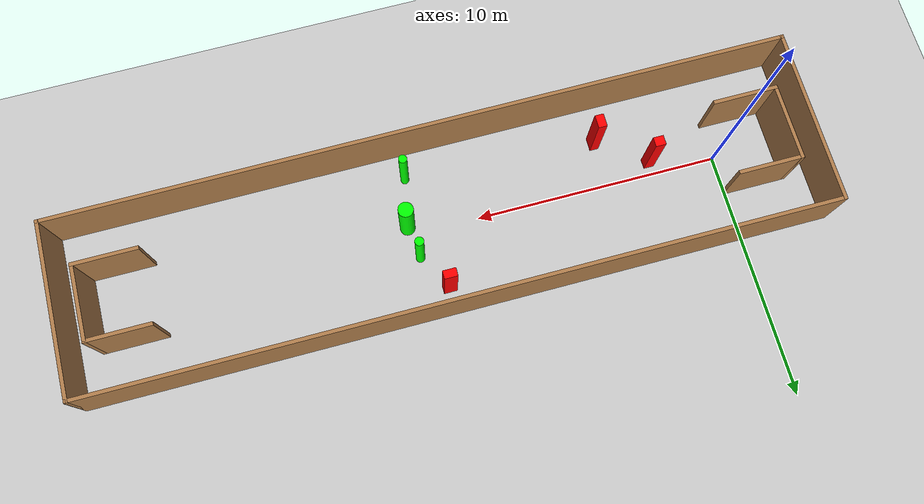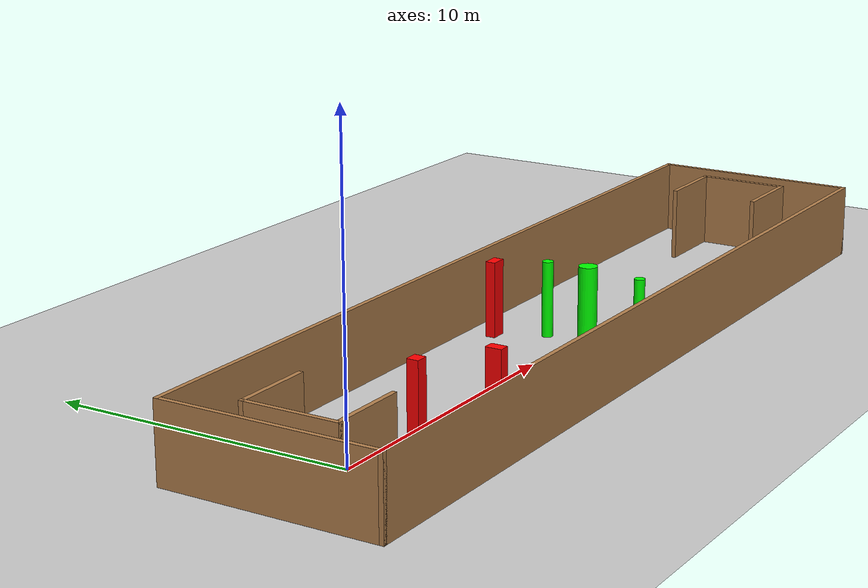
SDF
<sdf version="1.7">
 <world name="default">
  <light name="sun" type="directional">
   <pose>0 0 10 0 -0 0</pose>
   <diffuse>0.8 0.8 0.8 1</diffuse>
   <specular>0.2 0.2 0.2 1</specular>
   <attenuation>
    <range>1000</range>
    <constant>0.9</constant>
    <linear>0.01</linear>
    <quadratic>0.001</quadratic>
   </attenuation>
   <direction>-0.5 0.1 -0.9</direction>
   <spot><inner_angle>0</inner_angle><outer_angle>0</outer_angle><falloff>0</falloff></spot>
  </light>
  <model name="ground_plane">
   <static>1</static>
   <link name="link">
    <collision name="collision">
     <geometry><plane><normal>0 0 1</normal><size>100 100</size></plane></geometry>
     <surface>
      <contact><collide_bitmask>65535</collide_bitmask></contact>
      <friction><ode><mu>100</mu><mu2>50</mu2></ode></friction>
     </surface>
    </collision>
    <visual name="visual">
     <cast_shadows>0</cast_shadows>
     <geometry><plane><normal>0 0 1</normal><size>100 100</size></plane></geometry>
     <material>
      <script><uri>file://media/materials/scripts/gazebo.material</uri><name>Gazebo/Grey</name></script>
     </material>
    </visual>
   </link>
  </model>
  <gravity>0 0 -9.8</gravity>
  <magnetic_field>6e-06 2.3e-05 -4.2e-05</magnetic_field>
  <atmosphere type="adiabatic"/>
  <physics type="ode">
   <max_step_size>0.001</max_step_size>
   <real_time_factor>1</real_time_factor>
   <real_time_update_rate>1000</real_time_update_rate>
  </physics>
  <scene><ambient>0.4 0.4 0.4 1</ambient><background>0.7 0.7 0.7 1</background><shadows>1</shadows></scene>
  <spherical_coordinates>
   <surface_model>EARTH_WGS84</surface_model>
   <latitude_deg>0</latitude_deg>
   <longitude_deg>0</longitude_deg>
   <elevation>0</elevation>
   <heading_deg>0</heading_deg>
  </spherical_coordinates>
  <model name="my_base_walls">
   <link name="Wall_0">
    <collision name="Wall_0_Collision">
     <geometry><box><size>7.15 0.15 2.5</size></box></geometry>
     <pose>0 0 1.25 0 -0 0</pose>
    </collision>
    <visual name="Wall_0_Visual">
     <pose>0 0 1.25 0 -0 0</pose>
     <geometry><box><size>7.15 0.15 2.5</size></box></geometry>
     <material>
      <script><uri>file://media/materials/scripts/gazebo.material</uri><name>Gazebo/Wood</name></script>
      <ambient>1 1 1 1</ambient>
     </material>
     <meta><layer>0</layer></meta>
    </visual>
    <pose>-15 0 0 0 -0 1.5708</pose>
   </link>
   <link name="Wall_10">
    <collision name="Wall_10_Collision">
     <geometry><box><size>2.65 0.15 2.5</size></box></geometry>
     <pose>0 0 1.25 0 -0 0</pose>
    </collision>
    <visual name="Wall_10_Visual">
     <pose>0 0 1.25 0 -0 0</pose>
     <geometry><box><size>2.65 0.15 2.5</size></box></geometry>
     <material>
      <script><uri>file://media/materials/scripts/gazebo.material</uri><name>Gazebo/Wood</name></script>
      <ambient>1 1 1 1</ambient>
     </material>
     <meta><layer>0</layer></meta>
    </visual>
    <pose>-12.75 -1.5 0 0 -0 0</pose>
   </link>
   <link name="Wall_12">
    <collision name="Wall_12_Collision">
     <geometry><box><size>2.65 0.15 2.5</size></box></geometry>
     <pose>0 0 1.25 0 -0 0</pose>
    </collision>
    <visual name="Wall_12_Visual">
     <pose>0 0 1.25 0 -0 0</pose>
     <geometry><box><size>2.65 0.15 2.5</size></box></geometry>
     <material>
      <script><uri>file://media/materials/scripts/gazebo.material</uri><name>Gazebo/Wood</name></script>
      <ambient>1 1 1 1</ambient>
     </material>
     <meta><layer>0</layer></meta>
    </visual>
    <pose>-12.75 1.5 0 0 -0 0</pose>
   </link>
   <link name="Wall_14">
    <collision name="Wall_14_Collision">
     <geometry><box><size>3.15 0.15 2.5</size></box></geometry>
     <pose>0 0 1.25 0 -0 0</pose>
    </collision>
    <visual name="Wall_14_Visual">
     <pose>0 0 1.25 0 -0 0</pose>
     <geometry><box><size>3.15 0.15 2.5</size></box></geometry>
     <material>
      <script><uri>file://media/materials/scripts/gazebo.material</uri><name>Gazebo/Wood</name></script>
      <ambient>1 1 1 1</ambient>
     </material>
     <meta><layer>0</layer></meta>
    </visual>
    <pose>14 0 0 0 -0 -1.5708</pose>
   </link>
   <link name="Wall_15">
    <collision name="Wall_15_Collision">
     <geometry><box><size>2.65 0.15 2.5</size></box></geometry>
     <pose>0 0 1.25 0 -0 0</pose>
    </collision>
    <visual name="Wall_15_Visual">
     <pose>0 0 1.25 0 -0 0</pose>
     <geometry><box><size>2.65 0.15 2.5</size></box></geometry>
     <material>
      <script><uri>file://media/materials/scripts/gazebo.material</uri><name>Gazebo/Wood</name></script>
      <ambient>1 1 1 1</ambient>
     </material>
     <meta><layer>0</layer></meta>
    </visual>
    <pose>12.75 -1.5 0 0 -0 3.14159</pose>
   </link>
   <link name="Wall_17">
    <collision name="Wall_17_Collision">
     <geometry><box><size>2.65 0.15 2.5</size></box></geometry>
     <pose>0 0 1.25 0 -0 0</pose>
    </collision>
    <visual name="Wall_17_Visual">
     <pose>0 0 1.25 0 -0 0</pose>
     <geometry><box><size>2.65 0.15 2.5</size></box></geometry>
     <material>
      <script><uri>file://media/materials/scripts/gazebo.material</uri><name>Gazebo/Wood</name></script>
      <ambient>1 1 1 1</ambient>
     </material>
     <meta><layer>0</layer></meta>
    </visual>
    <pose>12.75 1.5 0 0 -0 3.14159</pose>
   </link>
   <link name="Wall_2">
    <collision name="Wall_2_Collision">
     <geometry><box><size>30.15 0.15 2.5</size></box></geometry>
     <pose>0 0 1.25 0 -0 0</pose>
    </collision>
    <visual name="Wall_2_Visual">
     <pose>0 0 1.25 0 -0 0</pose>
     <geometry><box><size>30.15 0.15 2.5</size></box></geometry>
     <material>
      <script><uri>file://media/materials/scripts/gazebo.material</uri><name>Gazebo/Wood</name></script>
      <ambient>1 1 1 1</ambient>
     </material>
     <meta><layer>0</layer></meta>
    </visual>
    <pose>-0 -3.5 0 0 -0 0</pose>
   </link>
   <link name="Wall_4">
    <collision name="Wall_4_Collision">
     <geometry><box><size>30.15 0.15 2.5</size></box></geometry>
     <pose>0 0 1.25 0 -0 0</pose>
    </collision>
    <visual name="Wall_4_Visual">
     <pose>0 0 1.25 0 -0 0</pose>
     <geometry><box><size>30.15 0.15 2.5</size></box></geometry>
     <material>
      <script><uri>file://media/materials/scripts/gazebo.material</uri><name>Gazebo/Wood</name></script>
      <ambient>1 1 1 1</ambient>
     </material>
     <meta><layer>0</layer></meta>
    </visual>
    <pose>-0 3.5 0 0 -0 0</pose>
   </link>
   <link name="Wall_6">
    <collision name="Wall_6_Collision">
     <geometry><box><size>7.15 0.15 2.5</size></box></geometry>
     <pose>0 0 1.25 0 -0 0</pose>
    </collision>
    <visual name="Wall_6_Visual">
     <pose>0 0 1.25 0 -0 0</pose>
     <geometry><box><size>7.15 0.15 2.5</size></box></geometry>
     <material>
      <script><uri>file://media/materials/scripts/gazebo.material</uri><name>Gazebo/Wood</name></script>
      <ambient>1 1 1 1</ambient>
     </material>
     <meta><layer>0</layer></meta>
    </visual>
    <pose>15 0 0 0 -0 -1.5708</pose>
   </link>
   <link name="Wall_9">
    <collision name="Wall_9_Collision">
     <geometry><box><size>3.15 0.15 2.5</size></box></geometry>
     <pose>0 0 1.25 0 -0 0</pose>
    </collision>
    <visual name="Wall_9_Visual">
     <pose>0 0 1.25 0 -0 0</pose>
     <geometry><box><size>3.15 0.15 2.5</size></box></geometry>
     <material>
      <script><uri>file://media/materials/scripts/gazebo.material</uri><name>Gazebo/Wood</name></script>
      <ambient>1 1 1 1</ambient>
     </material>
     <meta><layer>0</layer></meta>
    </visual>
    <pose>-14 0 0 0 -0 -1.5708</pose>
   </link>
   <static>1</static>
   <pose>11.5 0 0 0 -0 0</pose>
  </model>
  <model name="cylinder1">
   <static>1</static>
   <link name="link">
    <inertial>
     <mass>1</mass>
     <inertia><ixx>0.5</ixx><ixy>0</ixy><ixz>0</ixz><iyy>0.5</iyy><iyz>0</iyz><izz>1</izz></inertia>
    </inertial>
    <collision name="collision">
     <geometry><cylinder><radius>0.30690004510383107</radius><length>2.5</length></cylinder></geometry>
    </collision>
    <visual name="visual">
     <geometry><cylinder><radius>0.30690004510383107</radius><length>2.5</length></cylinder></geometry>
     <material>
      <ambient>0 1 0 1</ambient>
      <diffuse>0 1 0 1</diffuse>
      <specular>0.1 0.1 0.1 1</specular>
      <emissive>0 0 0 0</emissive>
     </material>
    </visual>
   </link>
   <pose>12.852057979753242 -0.3477691121723532 1.25 0 0 0</pose>
  </model>
  <model name="cylinder2">
   <static>1</static>
   <link name="link">
    <inertial>
     <mass>1</mass>
     <inertia><ixx>0.5</ixx><ixy>0</ixy><ixz>0</ixz><iyy>0.5</iyy><iyz>0</iyz><izz>1</izz></inertia>
    </inertial>
    <collision name="collision">
     <geometry><cylinder><radius>0.1708313273130755</radius><length>2.5</length></cylinder></geometry>
    </collision>
    <visual name="visual">
     <geometry><cylinder><radius>0.1708313273130755</radius><length>2.5</length></cylinder></geometry>
     <material>
      <ambient>0 1 0 1</ambient>
      <diffuse>0 1 0 1</diffuse>
      <specular>0.1 0.1 0.1 1</specular>
      <emissive>0 0 0 0</emissive>
     </material>
    </visual>
   </link>
   <pose>12.45513841018019 -2.364277291051667 1.25 0 0 0</pose>
  </model>
  <model name="cylinder3">
   <static>1</static>
   <link name="link">
    <inertial>
     <mass>1</mass>
     <inertia><ixx>0.5</ixx><ixy>0</ixy><ixz>0</ixz><iyy>0.5</iyy><iyz>0</iyz><izz>1</izz></inertia>
    </inertial>
    <collision name="collision">
     <geometry><cylinder><radius>0.18063340461942068</radius><length>2.5</length></cylinder></geometry>
    </collision>
    <visual name="visual">
     <geometry><cylinder><radius>0.18063340461942068</radius><length>2.5</length></cylinder></geometry>
     <material>
      <ambient>0 1 0 1</ambient>
      <diffuse>0 1 0 1</diffuse>
      <specular>0.1 0.1 0.1 1</specular>
      <emissive>0 0 0 0</emissive>
     </material>
    </visual>
   </link>
   <pose>12.66428715200733 0.9969199322460547 1.25 0 0 0</pose>
  </model>
  <model name="box1">
   <static>1</static>
   <link name="link">
    <inertial>
     <mass>1</mass>
     <inertia><ixx>0.083</ixx><ixy>0</ixy><ixz>0</ixz><iyy>0.083</iyy><iyz>0</iyz><izz>0.083</izz></inertia>
    </inertial>
    <collision name="collision">
     <geometry><box><size>0.35435271158884374 0.5285827597140327 2.5</size></box></geometry>
    </collision>
    <visual name="visual">
     <geometry><box><size>0.35435271158884374 0.5285827597140327 2.5</size></box></geometry>
     <material>
      <ambient>1 0 0 1</ambient>
      <diffuse>1 0 0 1</diffuse>
      <specular>0.1 0.1 0.1 1</specular>
      <emissive>0 0 0 0</emissive>
     </material>
    </visual>
    <sensor name="my_contact" type="contact">
     <contact><collision>box_collision</collision><topic>__default_topic__</topic></contact>
    </sensor>
   </link>
   <pose>4.578715667847645 -1.9035944817421693 1.25 0 0 0</pose>
  </model>
  <model name="box2">
   <static>1</static>
   <link name="link">
    <inertial>
     <mass>1</mass>
     <inertia><ixx>0.083</ixx><ixy>0</ixy><ixz>0</ixz><iyy>0.083</iyy><iyz>0</iyz><izz>0.083</izz></inertia>
    </inertial>
    <collision name="collision">
     <geometry><box><size>0.5348662545781213 0.333377167238029 2.5</size></box></geometry>
    </collision>
    <visual name="visual">
     <geometry><box><size>0.5348662545781213 0.333377167238029 2.5</size></box></geometry>
     <material>
      <ambient>1 0 0 1</ambient>
      <diffuse>1 0 0 1</diffuse>
      <specular>0.1 0.1 0.1 1</specular>
      <emissive>0 0 0 0</emissive>
     </material>
    </visual>
    <sensor name="my_contact" type="contact">
     <contact><collision>box_collision</collision><topic>__default_topic__</topic></contact>
    </sensor>
   </link>
   <pose>11.859825831464818 2.4933771133180587 1.25 0 0 0</pose>
  </model>
  <model name="box3">
   <static>1</static>
   <link name="link">
    <inertial>
     <mass>1</mass>
     <inertia><ixx>0.083</ixx><ixy>0</ixy><ixz>0</ixz><iyy>0.083</iyy><iyz>0</iyz><izz>0.083</izz></inertia>
    </inertial>
    <collision name="collision">
     <geometry><box><size>0.41687773518139365 0.3827737126631489 2.5</size></box></geometry>
    </collision>
    <visual name="visual">
     <geometry><box><size>0.41687773518139365 0.3827737126631489 2.5</size></box></geometry>
     <material>
      <ambient>1 0 0 1</ambient>
      <diffuse>1 0 0 1</diffuse>
      <specular>0.1 0.1 0.1 1</specular>
      <emissive>0 0 0 0</emissive>
     </material>
    </visual>
    <sensor name="my_contact" type="contact">
     <contact><collision>box_collision</collision><topic>__default_topic__</topic></contact>
    </sensor>
   </link>
   <pose>2.634289413859774 -0.5137397491002567 1.25 0 0 0</pose>
  </model>
 </world>
</sdf>
